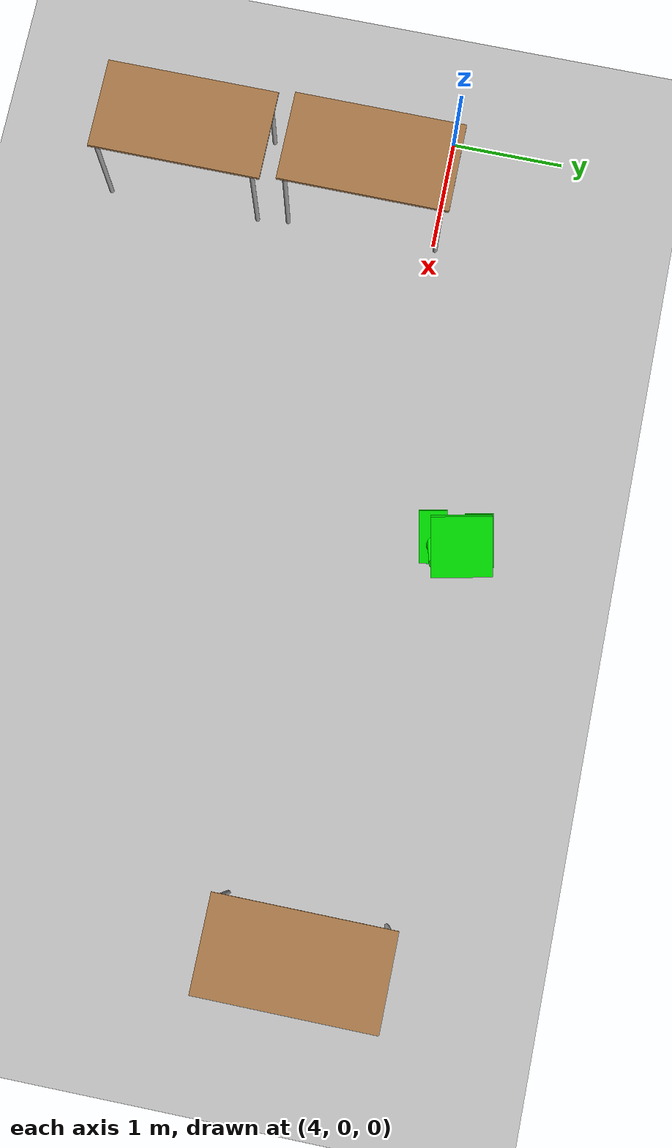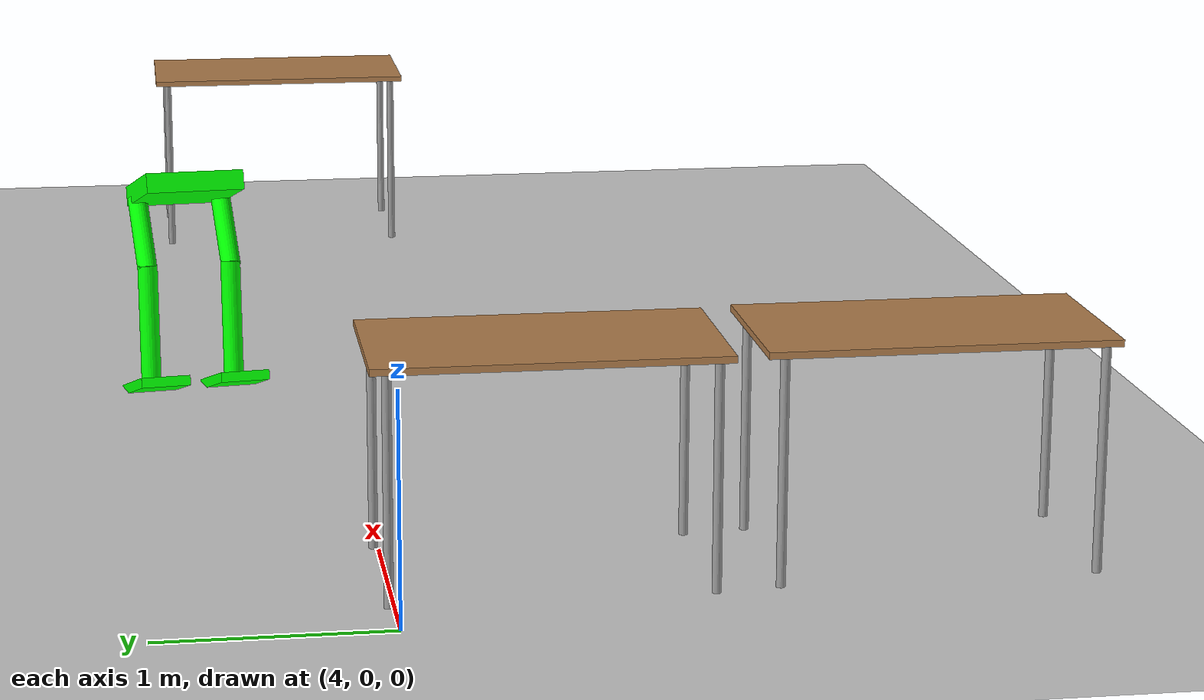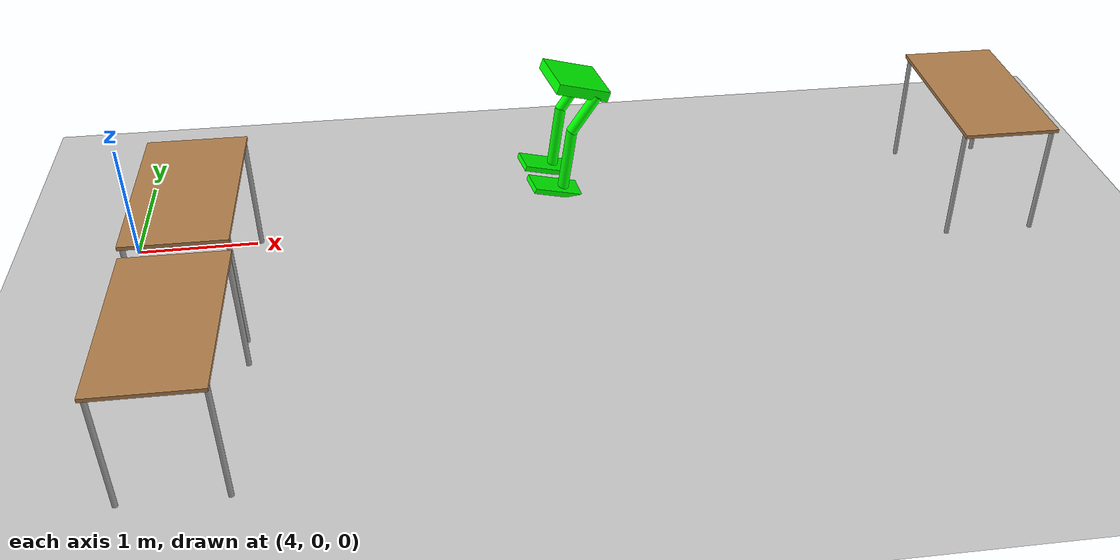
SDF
<sdf version="1.7">
 <world name="default">
  <model name="ground_plane">
   <static>1</static>
   <link name="link">
    <collision name="collision">
     <geometry><plane><normal>0 0 1</normal><size>100 100</size></plane></geometry>
     <surface>
      <contact><collide_bitmask>65535</collide_bitmask></contact>
      <friction><ode><mu>100</mu><mu2>50</mu2></ode></friction>
     </surface>
    </collision>
    <visual name="visual">
     <cast_shadows>0</cast_shadows>
     <geometry><plane><normal>0 0 1</normal><size>100 100</size></plane></geometry>
     <material>
      <script><uri>file://media/materials/scripts/gazebo.material</uri><name>Gazebo/Grey</name></script>
     </material>
    </visual>
   </link>
  </model>
  <model name="HumanoidRobot_clone">
   <link name="link_0">
    <inertial>
     <mass>1</mass>
     <inertia>
      <ixx>0.166667</ixx>
      <ixy>0</ixy>
      <ixz>0</ixz>
      <iyy>0.166667</iyy>
      <iyz>0</iyz>
      <izz>0.166667</izz>
     </inertia>
    </inertial>
    <pose>-0.088426 0.010705 0.536121 0 -0 0</pose>
    <visual name="visual">
     <geometry><box><size>0.5 0.5 0.1</size></box></geometry>
     <material>
      <lighting>1</lighting>
      <script><uri>file://media/materials/scripts/gazebo.material</uri><name>Gazebo/Grey</name></script>
      <shader type="pixel"><normal_map>__default__</normal_map></shader>
      <ambient>0 1 0 1</ambient>
      <diffuse>0.7 0.7 0.7 1</diffuse>
      <specular>0.01 0.01 0.01 1</specular>
      <emissive>0 0 0 1</emissive>
     </material>
    </visual>
    <collision name="collision">
     <geometry><box><size>0.5 0.5 0.1</size></box></geometry>
     <surface>
      <friction>
       <ode><mu>1</mu><mu2>1</mu2><fdir1>0 0 0</fdir1><slip1>0</slip1><slip2>0</slip2></ode>
       <torsional>
        <coefficient>1</coefficient>
        <patch_radius>0</patch_radius>
        <surface_radius>0</surface_radius>
        <use_patch_radius>1</use_patch_radius>
        <ode><slip>0</slip></ode>
       </torsional>
      </friction>
      <bounce><restitution_coefficient>0</restitution_coefficient><threshold>1e+06</threshold></bounce>
      <contact>
       <collide_without_contact>0</collide_without_contact>
       <collide_without_contact_bitmask>1</collide_without_contact_bitmask>
       <collide_bitmask>1</collide_bitmask>
       <ode>
        <soft_cfm>0</soft_cfm>
        <soft_erp>0.2</soft_erp>
        <kp>1e+13</kp>
        <kd>1</kd>
        <max_vel>0.01</max_vel>
        <min_depth>0</min_depth>
       </ode>
       <bullet>
        <split_impulse>1</split_impulse>
        <split_impulse_penetration_threshold>-0.01</split_impulse_penetration_threshold>
        <soft_cfm>0</soft_cfm>
        <soft_erp>0.2</soft_erp>
        <kp>1e+13</kp>
        <kd>1</kd>
       </bullet>
      </contact>
     </surface>
    </collision>
   </link>
   <link name="link_1">
    <inertial>
     <mass>1</mass>
     <inertia>
      <ixx>0.166667</ixx>
      <ixy>0</ixy>
      <ixz>0</ixz>
      <iyy>0.166667</iyy>
      <iyz>0</iyz>
      <izz>0.166667</izz>
     </inertia>
    </inertial>
    <pose>-0.002836 -0.189031 -0.453961 0 -0 0</pose>
    <visual name="visual">
     <geometry><box><size>0.5 0.25 0.05</size></box></geometry>
     <material>
      <lighting>1</lighting>
      <script><uri>file://media/materials/scripts/gazebo.material</uri><name>Gazebo/Grey</name></script>
      <shader type="pixel"><normal_map>__default__</normal_map></shader>
      <ambient>0 1 0 1</ambient>
      <diffuse>0.7 0.7 0.7 1</diffuse>
      <specular>0.01 0.01 0.01 1</specular>
      <emissive>0 0 0 1</emissive>
     </material>
    </visual>
    <collision name="collision">
     <geometry><box><size>0.5 0.25 0.05</size></box></geometry>
     <surface>
      <friction>
       <ode><mu>1</mu><mu2>1</mu2><fdir1>0 0 0</fdir1><slip1>0</slip1><slip2>0</slip2></ode>
       <torsional>
        <coefficient>1</coefficient>
        <patch_radius>0</patch_radius>
        <surface_radius>0</surface_radius>
        <use_patch_radius>1</use_patch_radius>
        <ode><slip>0</slip></ode>
       </torsional>
      </friction>
      <bounce><restitution_coefficient>0</restitution_coefficient><threshold>1e+06</threshold></bounce>
      <contact>
       <collide_without_contact>0</collide_without_contact>
       <collide_without_contact_bitmask>1</collide_without_contact_bitmask>
       <collide_bitmask>1</collide_bitmask>
       <ode>
        <soft_cfm>0</soft_cfm>
        <soft_erp>0.2</soft_erp>
        <kp>1e+13</kp>
        <kd>1</kd>
        <max_vel>0.01</max_vel>
        <min_depth>0</min_depth>
       </ode>
       <bullet>
        <split_impulse>1</split_impulse>
        <split_impulse_penetration_threshold>-0.01</split_impulse_penetration_threshold>
        <soft_cfm>0</soft_cfm>
        <soft_erp>0.2</soft_erp>
        <kp>1e+13</kp>
        <kd>1</kd>
       </bullet>
      </contact>
     </surface>
    </collision>
   </link>
   <link name="link_1_clone">
    <inertial>
     <mass>1</mass>
     <inertia>
      <ixx>0.166667</ixx>
      <ixy>0</ixy>
      <ixz>0</ixz>
      <iyy>0.166667</iyy>
      <iyz>0</iyz>
      <izz>0.166667</izz>
     </inertia>
    </inertial>
    <pose>0.031524 0.211991 -0.453961 0 -0 0</pose>
    <visual name="visual">
     <geometry><box><size>0.5 0.25 0.05</size></box></geometry>
     <material>
      <lighting>1</lighting>
      <script><uri>file://media/materials/scripts/gazebo.material</uri><name>Gazebo/Grey</name></script>
      <shader type="pixel"><normal_map>__default__</normal_map></shader>
      <ambient>0 1 0 1</ambient>
      <diffuse>0.7 0.7 0.7 1</diffuse>
      <specular>0.01 0.01 0.01 1</specular>
      <emissive>0 0 0 1</emissive>
     </material>
    </visual>
    <collision name="collision">
     <geometry><box><size>0.5 0.25 0.05</size></box></geometry>
     <surface>
      <friction>
       <ode><mu>1</mu><mu2>1</mu2><fdir1>0 0 0</fdir1><slip1>0</slip1><slip2>0</slip2></ode>
       <torsional>
        <coefficient>1</coefficient>
        <patch_radius>0</patch_radius>
        <surface_radius>0</surface_radius>
        <use_patch_radius>1</use_patch_radius>
        <ode><slip>0</slip></ode>
       </torsional>
      </friction>
      <bounce><restitution_coefficient>0</restitution_coefficient><threshold>1e+06</threshold></bounce>
      <contact>
       <collide_without_contact>0</collide_without_contact>
       <collide_without_contact_bitmask>1</collide_without_contact_bitmask>
       <collide_bitmask>1</collide_bitmask>
       <ode>
        <soft_cfm>0</soft_cfm>
        <soft_erp>0.2</soft_erp>
        <kp>1e+13</kp>
        <kd>1</kd>
        <max_vel>0.01</max_vel>
        <min_depth>0</min_depth>
       </ode>
       <bullet>
        <split_impulse>1</split_impulse>
        <split_impulse_penetration_threshold>-0.01</split_impulse_penetration_threshold>
        <soft_cfm>0</soft_cfm>
        <soft_erp>0.2</soft_erp>
        <kp>1e+13</kp>
        <kd>1</kd>
       </bullet>
      </contact>
     </surface>
    </collision>
   </link>
   <link name="link_2">
    <inertial>
     <mass>1</mass>
     <inertia><ixx>0.145833</ixx><ixy>0</ixy><ixz>0</ixz><iyy>0.145833</iyy><iyz>0</iyz><izz>0.125</izz></inertia>
    </inertial>
    <pose>-0.002516 -0.205584 0.325243 0 0.295116 0</pose>
    <visual name="visual">
     <geometry><cylinder><radius>0.05</radius><length>0.4</length></cylinder></geometry>
     <material>
      <lighting>1</lighting>
      <script><uri>file://media/materials/scripts/gazebo.material</uri><name>Gazebo/Grey</name></script>
      <shader type="pixel"><normal_map>__default__</normal_map></shader>
      <ambient>0 1 0 1</ambient>
      <diffuse>0.7 0.7 0.7 1</diffuse>
      <specular>0.01 0.01 0.01 1</specular>
      <emissive>0 0 0 1</emissive>
     </material>
    </visual>
    <collision name="collision">
     <geometry><cylinder><radius>0.05</radius><length>0.4</length></cylinder></geometry>
     <surface>
      <friction>
       <ode><mu>1</mu><mu2>1</mu2><fdir1>0 0 0</fdir1><slip1>0</slip1><slip2>0</slip2></ode>
       <torsional>
        <coefficient>1</coefficient>
        <patch_radius>0</patch_radius>
        <surface_radius>0</surface_radius>
        <use_patch_radius>1</use_patch_radius>
        <ode><slip>0</slip></ode>
       </torsional>
      </friction>
      <bounce><restitution_coefficient>0</restitution_coefficient><threshold>1e+06</threshold></bounce>
      <contact>
       <collide_without_contact>0</collide_without_contact>
       <collide_without_contact_bitmask>1</collide_without_contact_bitmask>
       <collide_bitmask>1</collide_bitmask>
       <ode>
        <soft_cfm>0</soft_cfm>
        <soft_erp>0.2</soft_erp>
        <kp>1e+13</kp>
        <kd>1</kd>
        <max_vel>0.01</max_vel>
        <min_depth>0</min_depth>
       </ode>
       <bullet>
        <split_impulse>1</split_impulse>
        <split_impulse_penetration_threshold>-0.01</split_impulse_penetration_threshold>
        <soft_cfm>0</soft_cfm>
        <soft_erp>0.2</soft_erp>
        <kp>1e+13</kp>
        <kd>1</kd>
       </bullet>
      </contact>
     </surface>
    </collision>
   </link>
   <link name="link_2_clone_0">
    <inertial>
     <mass>1</mass>
     <inertia><ixx>0.145833</ixx><ixy>0</ixy><ixz>0</ixz><iyy>0.145833</iyy><iyz>0</iyz><izz>0.125</izz></inertia>
    </inertial>
    <pose>0.033564 0.221349 0.325243 0 0.295116 0</pose>
    <visual name="visual">
     <geometry><cylinder><radius>0.05</radius><length>0.4</length></cylinder></geometry>
     <material>
      <lighting>1</lighting>
      <script><uri>file://media/materials/scripts/gazebo.material</uri><name>Gazebo/Grey</name></script>
      <shader type="pixel"><normal_map>__default__</normal_map></shader>
      <ambient>0 1 0 1</ambient>
      <diffuse>0.7 0.7 0.7 1</diffuse>
      <specular>0.01 0.01 0.01 1</specular>
      <emissive>0 0 0 1</emissive>
     </material>
    </visual>
    <collision name="collision">
     <geometry><cylinder><radius>0.05</radius><length>0.4</length></cylinder></geometry>
     <surface>
      <friction>
       <ode><mu>1</mu><mu2>1</mu2><fdir1>0 0 0</fdir1><slip1>0</slip1><slip2>0</slip2></ode>
       <torsional>
        <coefficient>1</coefficient>
        <patch_radius>0</patch_radius>
        <surface_radius>0</surface_radius>
        <use_patch_radius>1</use_patch_radius>
        <ode><slip>0</slip></ode>
       </torsional>
      </friction>
      <bounce><restitution_coefficient>0</restitution_coefficient><threshold>1e+06</threshold></bounce>
      <contact>
       <collide_without_contact>0</collide_without_contact>
       <collide_without_contact_bitmask>1</collide_without_contact_bitmask>
       <collide_bitmask>1</collide_bitmask>
       <ode>
        <soft_cfm>0</soft_cfm>
        <soft_erp>0.2</soft_erp>
        <kp>1e+13</kp>
        <kd>1</kd>
        <max_vel>0.01</max_vel>
        <min_depth>0</min_depth>
       </ode>
       <bullet>
        <split_impulse>1</split_impulse>
        <split_impulse_penetration_threshold>-0.01</split_impulse_penetration_threshold>
        <soft_cfm>0</soft_cfm>
        <soft_erp>0.2</soft_erp>
        <kp>1e+13</kp>
        <kd>1</kd>
       </bullet>
      </contact>
     </surface>
    </collision>
   </link>
   <link name="link_2_clone_clone">
    <inertial>
     <mass>1</mass>
     <inertia><ixx>0.145833</ixx><ixy>0</ixy><ixz>0</ixz><iyy>0.145833</iyy><iyz>0</iyz><izz>0.125</izz></inertia>
    </inertial>
    <pose>-0.002836 -0.203823 -0.139342 0 -0.190908 0</pose>
    <visual name="visual">
     <geometry><cylinder><radius>0.05</radius><length>0.6</length></cylinder></geometry>
     <material>
      <lighting>1</lighting>
      <script><uri>file://media/materials/scripts/gazebo.material</uri><name>Gazebo/Grey</name></script>
      <shader type="pixel"><normal_map>__default__</normal_map></shader>
      <ambient>0 1 0 1</ambient>
      <diffuse>0.7 0.7 0.7 1</diffuse>
      <specular>0.01 0.01 0.01 1</specular>
      <emissive>0 0 0 1</emissive>
     </material>
    </visual>
    <collision name="collision">
     <geometry><cylinder><radius>0.05</radius><length>0.6</length></cylinder></geometry>
     <surface>
      <friction>
       <ode><mu>1</mu><mu2>1</mu2><fdir1>0 0 0</fdir1><slip1>0</slip1><slip2>0</slip2></ode>
       <torsional>
        <coefficient>1</coefficient>
        <patch_radius>0</patch_radius>
        <surface_radius>0</surface_radius>
        <use_patch_radius>1</use_patch_radius>
        <ode><slip>0</slip></ode>
       </torsional>
      </friction>
      <bounce><restitution_coefficient>0</restitution_coefficient><threshold>1e+06</threshold></bounce>
      <contact>
       <collide_without_contact>0</collide_without_contact>
       <collide_without_contact_bitmask>1</collide_without_contact_bitmask>
       <collide_bitmask>1</collide_bitmask>
       <ode>
        <soft_cfm>0</soft_cfm>
        <soft_erp>0.2</soft_erp>
        <kp>1e+13</kp>
        <kd>1</kd>
        <max_vel>0.01</max_vel>
        <min_depth>0</min_depth>
       </ode>
       <bullet>
        <split_impulse>1</split_impulse>
        <split_impulse_penetration_threshold>-0.01</split_impulse_penetration_threshold>
        <soft_cfm>0</soft_cfm>
        <soft_erp>0.2</soft_erp>
        <kp>1e+13</kp>
        <kd>1</kd>
       </bullet>
      </contact>
     </surface>
    </collision>
   </link>
   <link name="link_2_clone_clone_clone">
    <inertial>
     <mass>1</mass>
     <inertia><ixx>0.145833</ixx><ixy>0</ixy><ixz>0</ixz><iyy>0.145833</iyy><iyz>0</iyz><izz>0.125</izz></inertia>
    </inertial>
    <pose>0.031524 0.2206 -0.139342 0 -0.190908 0</pose>
    <visual name="visual">
     <geometry><cylinder><radius>0.05</radius><length>0.6</length></cylinder></geometry>
     <material>
      <lighting>1</lighting>
      <script><uri>file://media/materials/scripts/gazebo.material</uri><name>Gazebo/Grey</name></script>
      <shader type="pixel"><normal_map>__default__</normal_map></shader>
      <ambient>0 1 0 1</ambient>
      <diffuse>0.7 0.7 0.7 1</diffuse>
      <specular>0.01 0.01 0.01 1</specular>
      <emissive>0 0 0 1</emissive>
     </material>
    </visual>
    <collision name="collision">
     <geometry><cylinder><radius>0.05</radius><length>0.6</length></cylinder></geometry>
     <surface>
      <friction>
       <ode><mu>1</mu><mu2>1</mu2><fdir1>0 0 0</fdir1><slip1>0</slip1><slip2>0</slip2></ode>
       <torsional>
        <coefficient>1</coefficient>
        <patch_radius>0</patch_radius>
        <surface_radius>0</surface_radius>
        <use_patch_radius>1</use_patch_radius>
        <ode><slip>0</slip></ode>
       </torsional>
      </friction>
      <bounce><restitution_coefficient>0</restitution_coefficient><threshold>1e+06</threshold></bounce>
      <contact>
       <collide_without_contact>0</collide_without_contact>
       <collide_without_contact_bitmask>1</collide_without_contact_bitmask>
       <collide_bitmask>1</collide_bitmask>
       <ode>
        <soft_cfm>0</soft_cfm>
        <soft_erp>0.2</soft_erp>
        <kp>1e+13</kp>
        <kd>1</kd>
        <max_vel>0.01</max_vel>
        <min_depth>0</min_depth>
       </ode>
       <bullet>
        <split_impulse>1</split_impulse>
        <split_impulse_penetration_threshold>-0.01</split_impulse_penetration_threshold>
        <soft_cfm>0</soft_cfm>
        <soft_erp>0.2</soft_erp>
        <kp>1e+13</kp>
        <kd>1</kd>
       </bullet>
      </contact>
     </surface>
    </collision>
   </link>
   <joint name="link_0_JOINT_0" type="revolute">
    <parent>link_0</parent>
    <child>link_2</child>
    <axis>
     <xyz>0 0 1</xyz>
     <limit>
      <lower>-1.79769e+308</lower>
      <upper>1.79769e+308</upper>
      <effort>-1</effort>
      <velocity>-1</velocity>
     </limit>
     <dynamics>
      <spring_reference>0</spring_reference>
      <spring_stiffness>0</spring_stiffness>
      <damping>0</damping>
      <friction>0</friction>
     </dynamics>
    </axis>
    <physics>
     <ode><limit><cfm>0</cfm><erp>0.2</erp></limit><suspension><cfm>0</cfm><erp>0.2</erp></suspension></ode>
    </physics>
   </joint>
   <joint name="link_0_JOINT_1" type="revolute">
    <parent>link_0</parent>
    <child>link_2_clone_0</child>
    <axis>
     <xyz>0 0 1</xyz>
     <limit>
      <lower>-1.79769e+308</lower>
      <upper>1.79769e+308</upper>
      <effort>-1</effort>
      <velocity>-1</velocity>
     </limit>
     <dynamics>
      <spring_reference>0</spring_reference>
      <spring_stiffness>0</spring_stiffness>
      <damping>0</damping>
      <friction>0</friction>
     </dynamics>
    </axis>
    <physics>
     <ode><limit><cfm>0</cfm><erp>0.2</erp></limit><suspension><cfm>0</cfm><erp>0.2</erp></suspension></ode>
    </physics>
   </joint>
   <joint name="link_2_JOINT_3" type="revolute">
    <parent>link_2</parent>
    <child>link_2_clone_clone</child>
    <axis>
     <xyz>0 0 1</xyz>
     <limit>
      <lower>-1.79769e+308</lower>
      <upper>1.79769e+308</upper>
      <effort>-1</effort>
      <velocity>-1</velocity>
     </limit>
     <dynamics>
      <spring_reference>0</spring_reference>
      <spring_stiffness>0</spring_stiffness>
      <damping>0</damping>
      <friction>0</friction>
     </dynamics>
    </axis>
    <physics>
     <ode><limit><cfm>0</cfm><erp>0.2</erp></limit><suspension><cfm>0</cfm><erp>0.2</erp></suspension></ode>
    </physics>
   </joint>
   <joint name="link_2_clone_0_JOINT_4" type="revolute">
    <parent>link_2_clone_0</parent>
    <child>link_2_clone_clone_clone</child>
    <axis>
     <xyz>0 0 1</xyz>
     <limit>
      <lower>-1.79769e+308</lower>
      <upper>1.79769e+308</upper>
      <effort>-1</effort>
      <velocity>-1</velocity>
     </limit>
     <dynamics>
      <spring_reference>0</spring_reference>
      <spring_stiffness>0</spring_stiffness>
      <damping>0</damping>
      <friction>0</friction>
     </dynamics>
    </axis>
    <physics>
     <ode><limit><cfm>0</cfm><erp>0.2</erp></limit><suspension><cfm>0</cfm><erp>0.2</erp></suspension></ode>
    </physics>
   </joint>
   <joint name="link_2_clone_clone_JOINT_5" type="revolute">
    <parent>link_2_clone_clone</parent>
    <child>link_1</child>
    <axis>
     <xyz>0 0 1</xyz>
     <limit>
      <lower>-1.79769e+308</lower>
      <upper>1.79769e+308</upper>
      <effort>-1</effort>
      <velocity>-1</velocity>
     </limit>
     <dynamics>
      <spring_reference>0</spring_reference>
      <spring_stiffness>0</spring_stiffness>
      <damping>0</damping>
      <friction>0</friction>
     </dynamics>
    </axis>
    <physics>
     <ode><limit><cfm>0</cfm><erp>0.2</erp></limit><suspension><cfm>0</cfm><erp>0.2</erp></suspension></ode>
    </physics>
   </joint>
   <joint name="link_2_clone_clone_clone_JOINT_6" type="revolute">
    <parent>link_2_clone_clone_clone</parent>
    <child>link_1_clone</child>
    <axis>
     <xyz>0 0 1</xyz>
     <limit>
      <lower>-1.79769e+308</lower>
      <upper>1.79769e+308</upper>
      <effort>-1</effort>
      <velocity>-1</velocity>
     </limit>
     <dynamics>
      <spring_reference>0</spring_reference>
      <spring_stiffness>0</spring_stiffness>
      <damping>0</damping>
      <friction>0</friction>
     </dynamics>
    </axis>
    <physics>
     <ode><limit><cfm>0</cfm><erp>0.2</erp></limit><suspension><cfm>0</cfm><erp>0.2</erp></suspension></ode>
    </physics>
   </joint>
   <static>0</static>
   <pose>7.76748 0.711651 0.473368 0.02849 0.335748 0.212439</pose>
  </model>
  <model name="table_clone_2_clone_2">
   <static>1</static>
   <link name="link">
    <collision name="surface">
     <pose>0 0 1 0 -0 0</pose>
     <geometry><box><size>1.5 0.8 0.03</size></box></geometry>
     <surface><friction><ode><mu>0.6</mu><mu2>0.6</mu2></ode></friction></surface>
    </collision>
    <visual name="visual1">
     <pose>0 0 1 0 -0 0</pose>
     <geometry><box><size>1.5 0.8 0.03</size></box></geometry>
     <material>
      <script><uri>file://media/materials/scripts/gazebo.material</uri><name>Gazebo/Wood</name></script>
     </material>
    </visual>
    <collision name="front_left_leg">
     <pose>0.68 0.38 0.5 0 -0 0</pose>
     <geometry><cylinder><radius>0.02</radius><length>1</length></cylinder></geometry>
    </collision>
    <visual name="front_left_leg">
     <pose>0.68 0.38 0.5 0 -0 0</pose>
     <geometry><cylinder><radius>0.02</radius><length>1</length></cylinder></geometry>
     <material>
      <script><uri>file://media/materials/scripts/gazebo.material</uri><name>Gazebo/Grey</name></script>
     </material>
    </visual>
    <collision name="front_right_leg">
     <pose>0.68 -0.38 0.5 0 -0 0</pose>
     <geometry><cylinder><radius>0.02</radius><length>1</length></cylinder></geometry>
    </collision>
    <visual name="front_right_leg">
     <pose>0.68 -0.38 0.5 0 -0 0</pose>
     <geometry><cylinder><radius>0.02</radius><length>1</length></cylinder></geometry>
     <material>
      <script><uri>file://media/materials/scripts/gazebo.material</uri><name>Gazebo/Grey</name></script>
     </material>
    </visual>
    <collision name="back_right_leg">
     <pose>-0.68 -0.38 0.5 0 -0 0</pose>
     <geometry><cylinder><radius>0.02</radius><length>1</length></cylinder></geometry>
    </collision>
    <visual name="back_right_leg">
     <pose>-0.68 -0.38 0.5 0 -0 0</pose>
     <geometry><cylinder><radius>0.02</radius><length>1</length></cylinder></geometry>
     <material>
      <script><uri>file://media/materials/scripts/gazebo.material</uri><name>Gazebo/Grey</name></script>
     </material>
    </visual>
    <collision name="back_left_leg">
     <pose>-0.68 0.38 0.5 0 -0 0</pose>
     <geometry><cylinder><radius>0.02</radius><length>1</length></cylinder></geometry>
    </collision>
    <visual name="back_left_leg">
     <pose>-0.68 0.38 0.5 0 -0 0</pose>
     <geometry><cylinder><radius>0.02</radius><length>1</length></cylinder></geometry>
     <material>
      <script><uri>file://media/materials/scripts/gazebo.material</uri><name>Gazebo/Grey</name></script>
     </material>
    </visual>
   </link>
   <pose>4.6499 -0.658099 0 0 -0 1.5674</pose>
  </model>
  <model name="table_clone_2_clone_3">
   <static>1</static>
   <link name="link">
    <collision name="surface">
     <pose>0 0 1 0 -0 0</pose>
     <geometry><box><size>1.5 0.8 0.03</size></box></geometry>
     <surface><friction><ode><mu>0.6</mu><mu2>0.6</mu2></ode></friction></surface>
    </collision>
    <visual name="visual1">
     <pose>0 0 1 0 -0 0</pose>
     <geometry><box><size>1.5 0.8 0.03</size></box></geometry>
     <material>
      <script><uri>file://media/materials/scripts/gazebo.material</uri><name>Gazebo/Wood</name></script>
     </material>
    </visual>
    <collision name="front_left_leg">
     <pose>0.68 0.38 0.5 0 -0 0</pose>
     <geometry><cylinder><radius>0.02</radius><length>1</length></cylinder></geometry>
    </collision>
    <visual name="front_left_leg">
     <pose>0.68 0.38 0.5 0 -0 0</pose>
     <geometry><cylinder><radius>0.02</radius><length>1</length></cylinder></geometry>
     <material>
      <script><uri>file://media/materials/scripts/gazebo.material</uri><name>Gazebo/Grey</name></script>
     </material>
    </visual>
    <collision name="front_right_leg">
     <pose>0.68 -0.38 0.5 0 -0 0</pose>
     <geometry><cylinder><radius>0.02</radius><length>1</length></cylinder></geometry>
    </collision>
    <visual name="front_right_leg">
     <pose>0.68 -0.38 0.5 0 -0 0</pose>
     <geometry><cylinder><radius>0.02</radius><length>1</length></cylinder></geometry>
     <material>
      <script><uri>file://media/materials/scripts/gazebo.material</uri><name>Gazebo/Grey</name></script>
     </material>
    </visual>
    <collision name="back_right_leg">
     <pose>-0.68 -0.38 0.5 0 -0 0</pose>
     <geometry><cylinder><radius>0.02</radius><length>1</length></cylinder></geometry>
    </collision>
    <visual name="back_right_leg">
     <pose>-0.68 -0.38 0.5 0 -0 0</pose>
     <geometry><cylinder><radius>0.02</radius><length>1</length></cylinder></geometry>
     <material>
      <script><uri>file://media/materials/scripts/gazebo.material</uri><name>Gazebo/Grey</name></script>
     </material>
    </visual>
    <collision name="back_left_leg">
     <pose>-0.68 0.38 0.5 0 -0 0</pose>
     <geometry><cylinder><radius>0.02</radius><length>1</length></cylinder></geometry>
    </collision>
    <visual name="back_left_leg">
     <pose>-0.68 0.38 0.5 0 -0 0</pose>
     <geometry><cylinder><radius>0.02</radius><length>1</length></cylinder></geometry>
     <material>
      <script><uri>file://media/materials/scripts/gazebo.material</uri><name>Gazebo/Grey</name></script>
     </material>
    </visual>
   </link>
   <pose>4.67801 -2.29627 0 0 -0 1.5674</pose>
  </model>
  <model name="table_clone_2_clone_4">
   <static>1</static>
   <link name="link">
    <collision name="surface">
     <pose>0 0 1 0 -0 0</pose>
     <geometry><box><size>1.5 0.8 0.03</size></box></geometry>
     <surface><friction><ode><mu>0.6</mu><mu2>0.6</mu2></ode></friction></surface>
    </collision>
    <visual name="visual1">
     <pose>0 0 1 0 -0 0</pose>
     <geometry><box><size>1.5 0.8 0.03</size></box></geometry>
     <material>
      <script><uri>file://media/materials/scripts/gazebo.material</uri><name>Gazebo/Wood</name></script>
     </material>
    </visual>
    <collision name="front_left_leg">
     <pose>0.68 0.38 0.5 0 -0 0</pose>
     <geometry><cylinder><radius>0.02</radius><length>1</length></cylinder></geometry>
    </collision>
    <visual name="front_left_leg">
     <pose>0.68 0.38 0.5 0 -0 0</pose>
     <geometry><cylinder><radius>0.02</radius><length>1</length></cylinder></geometry>
     <material>
      <script><uri>file://media/materials/scripts/gazebo.material</uri><name>Gazebo/Grey</name></script>
     </material>
    </visual>
    <collision name="front_right_leg">
     <pose>0.68 -0.38 0.5 0 -0 0</pose>
     <geometry><cylinder><radius>0.02</radius><length>1</length></cylinder></geometry>
    </collision>
    <visual name="front_right_leg">
     <pose>0.68 -0.38 0.5 0 -0 0</pose>
     <geometry><cylinder><radius>0.02</radius><length>1</length></cylinder></geometry>
     <material>
      <script><uri>file://media/materials/scripts/gazebo.material</uri><name>Gazebo/Grey</name></script>
     </material>
    </visual>
    <collision name="back_right_leg">
     <pose>-0.68 -0.38 0.5 0 -0 0</pose>
     <geometry><cylinder><radius>0.02</radius><length>1</length></cylinder></geometry>
    </collision>
    <visual name="back_right_leg">
     <pose>-0.68 -0.38 0.5 0 -0 0</pose>
     <geometry><cylinder><radius>0.02</radius><length>1</length></cylinder></geometry>
     <material>
      <script><uri>file://media/materials/scripts/gazebo.material</uri><name>Gazebo/Grey</name></script>
     </material>
    </visual>
    <collision name="back_left_leg">
     <pose>-0.68 0.38 0.5 0 -0 0</pose>
     <geometry><cylinder><radius>0.02</radius><length>1</length></cylinder></geometry>
    </collision>
    <visual name="back_left_leg">
     <pose>-0.68 0.38 0.5 0 -0 0</pose>
     <geometry><cylinder><radius>0.02</radius><length>1</length></cylinder></geometry>
     <material>
      <script><uri>file://media/materials/scripts/gazebo.material</uri><name>Gazebo/Grey</name></script>
     </material>
    </visual>
   </link>
   <pose>11.3473 0.065566 0 0 -0 1.5674</pose>
  </model>
 </world>
</sdf>
